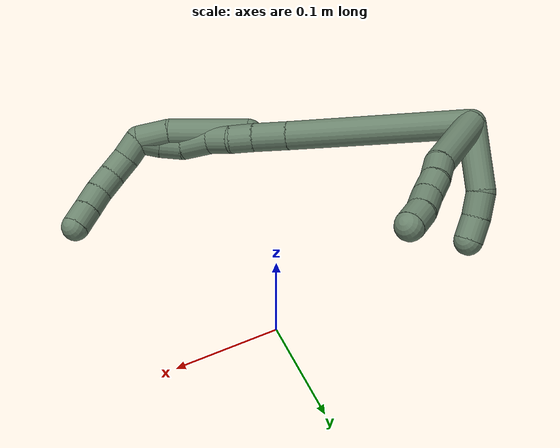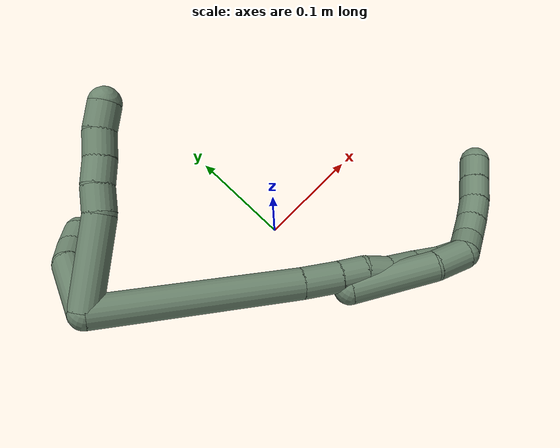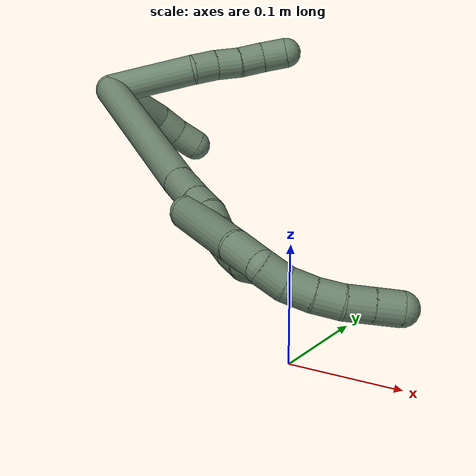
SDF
<sdf version="1.7">
 <world name="default">
  <model name="17">
   <static>0</static>
   <link name="17">
    <collision name="collision-cylinder-e_1_2_8">
     <pose>0.019589 0.017103 0.023149 -0.636306 0.597581 -0.20219</pose>
     <geometry><cylinder><radius>0.0125</radius><length>0.06963</length></cylinder></geometry>
     <surface>
      <friction><ode><mu>1.16</mu><mu2>1.16</mu2><slip1>0</slip1><slip2>0</slip2></ode></friction>
      <contact><ode><kp>1e+06</kp><kd>1</kd><max_vel>0</max_vel><min_depth>0.001</min_depth></ode></contact>
     </surface>
    </collision>
    <visual name="visual-cylinder-e_1_2_8">
     <pose>0.019589 0.017103 0.023149 -0.636306 0.597581 -0.20219</pose>
     <geometry><cylinder><radius>0.0125</radius><length>0.06963</length></cylinder></geometry>
     <material><ambient>0.415686 0.509804 0.423529 1</ambient></material>
    </visual>
    <collision name="collision-cylinder-e_2_8_9">
     <pose>0.044157 0.041305 0.051487 -0.939599 0.515255 -0.265969</pose>
     <geometry><cylinder><radius>0.0125</radius><length>0.020211</length></cylinder></geometry>
     <surface>
      <friction><ode><mu>1.16</mu><mu2>1.16</mu2><slip1>0</slip1><slip2>0</slip2></ode></friction>
      <contact><ode><kp>1e+06</kp><kd>1</kd><max_vel>0</max_vel><min_depth>0.001</min_depth></ode></contact>
     </surface>
    </collision>
    <visual name="visual-cylinder-e_2_8_9">
     <pose>0.044157 0.041305 0.051487 -0.939599 0.515255 -0.265969</pose>
     <geometry><cylinder><radius>0.0125</radius><length>0.020211</length></cylinder></geometry>
     <material><ambient>0.415686 0.509804 0.423529 1</ambient></material>
    </visual>
    <collision name="collision-cylinder-e_3_9_10">
     <pose>0.05532 0.05433 0.061869 -0.851296 0.665429 -0.310804</pose>
     <geometry><cylinder><radius>0.0125</radius><length>0.020032</length></cylinder></geometry>
     <surface>
      <friction><ode><mu>1.16</mu><mu2>1.16</mu2><slip1>0</slip1><slip2>0</slip2></ode></friction>
      <contact><ode><kp>1e+06</kp><kd>1</kd><max_vel>0</max_vel><min_depth>0.001</min_depth></ode></contact>
     </surface>
    </collision>
    <visual name="visual-cylinder-e_3_9_10">
     <pose>0.05532 0.05433 0.061869 -0.851296 0.665429 -0.310804</pose>
     <geometry><cylinder><radius>0.0125</radius><length>0.020032</length></cylinder></geometry>
     <material><ambient>0.415686 0.509804 0.423529 1</ambient></material>
    </visual>
    <collision name="collision-cylinder-e_4_10_11">
     <pose>0.066592 0.066798 0.07271 -0.858489 0.53206 -0.248159</pose>
     <geometry><cylinder><radius>0.0125</radius><length>0.020058</length></cylinder></geometry>
     <surface>
      <friction><ode><mu>1.16</mu><mu2>1.16</mu2><slip1>0</slip1><slip2>0</slip2></ode></friction>
      <contact><ode><kp>1e+06</kp><kd>1</kd><max_vel>0</max_vel><min_depth>0.001</min_depth></ode></contact>
     </surface>
    </collision>
    <visual name="visual-cylinder-e_4_10_11">
     <pose>0.066592 0.066798 0.07271 -0.858489 0.53206 -0.248159</pose>
     <geometry><cylinder><radius>0.0125</radius><length>0.020058</length></cylinder></geometry>
     <material><ambient>0.415686 0.509804 0.423529 1</ambient></material>
    </visual>
    <collision name="collision-cylinder-e_5_11_6">
     <pose>0.077724 0.078129 0.084778 -0.641049 0.646447 -0.221492</pose>
     <geometry><cylinder><radius>0.0125</radius><length>0.020069</length></cylinder></geometry>
     <surface>
      <friction><ode><mu>1.16</mu><mu2>1.16</mu2><slip1>0</slip1><slip2>0</slip2></ode></friction>
      <contact><ode><kp>1e+06</kp><kd>1</kd><max_vel>0</max_vel><min_depth>0.001</min_depth></ode></contact>
     </surface>
    </collision>
    <visual name="visual-cylinder-e_5_11_6">
     <pose>0.077724 0.078129 0.084778 -0.641049 0.646447 -0.221492</pose>
     <geometry><cylinder><radius>0.0125</radius><length>0.020069</length></cylinder></geometry>
     <material><ambient>0.415686 0.509804 0.423529 1</ambient></material>
    </visual>
    <collision name="collision-cylinder-e_1_2_12">
     <pose>0.016287 0.022708 -0.00768 -1.89693 0.596777 -0.810019</pose>
     <geometry><cylinder><radius>0.0125</radius><length>0.057961</length></cylinder></geometry>
     <surface>
      <friction><ode><mu>1.16</mu><mu2>1.16</mu2><slip1>0</slip1><slip2>0</slip2></ode></friction>
      <contact><ode><kp>1e+06</kp><kd>1</kd><max_vel>0</max_vel><min_depth>0.001</min_depth></ode></contact>
     </surface>
    </collision>
    <visual name="visual-cylinder-e_1_2_12">
     <pose>0.016287 0.022708 -0.00768 -1.89693 0.596777 -0.810019</pose>
     <geometry><cylinder><radius>0.0125</radius><length>0.057961</length></cylinder></geometry>
     <material><ambient>0.415686 0.509804 0.423529 1</ambient></material>
    </visual>
    <collision name="collision-cylinder-e_2_12_13">
     <pose>0.041386 0.05139 -0.017815 -1.96064 0.938355 -1.29509</pose>
     <geometry><cylinder><radius>0.0125</radius><length>0.021853</length></cylinder></geometry>
     <surface>
      <friction><ode><mu>1.16</mu><mu2>1.16</mu2><slip1>0</slip1><slip2>0</slip2></ode></friction>
      <contact><ode><kp>1e+06</kp><kd>1</kd><max_vel>0</max_vel><min_depth>0.001</min_depth></ode></contact>
     </surface>
    </collision>
    <visual name="visual-cylinder-e_2_12_13">
     <pose>0.041386 0.05139 -0.017815 -1.96064 0.938355 -1.29509</pose>
     <geometry><cylinder><radius>0.0125</radius><length>0.021853</length></cylinder></geometry>
     <material><ambient>0.415686 0.509804 0.423529 1</ambient></material>
    </visual>
    <collision name="collision-cylinder-e_3_13_5">
     <pose>0.058925 0.062353 -0.021187 -1.75272 1.04422 -1.20914</pose>
     <geometry><cylinder><radius>0.0125</radius><length>0.020186</length></cylinder></geometry>
     <surface>
      <friction><ode><mu>1.16</mu><mu2>1.16</mu2><slip1>0</slip1><slip2>0</slip2></ode></friction>
      <contact><ode><kp>1e+06</kp><kd>1</kd><max_vel>0</max_vel><min_depth>0.001</min_depth></ode></contact>
     </surface>
    </collision>
    <visual name="visual-cylinder-e_3_13_5">
     <pose>0.058925 0.062353 -0.021187 -1.75272 1.04422 -1.20914</pose>
     <geometry><cylinder><radius>0.0125</radius><length>0.020186</length></cylinder></geometry>
     <material><ambient>0.415686 0.509804 0.423529 1</ambient></material>
    </visual>
    <collision name="collision-cylinder-e_1_2_14">
     <pose>0.060897 -0.049434 0.016401 1.25045 0.863251 0.641939</pose>
     <geometry><cylinder><radius>0.0125</radius><length>0.160264</length></cylinder></geometry>
     <surface>
      <friction><ode><mu>1.16</mu><mu2>1.16</mu2><slip1>0</slip1><slip2>0</slip2></ode></friction>
      <contact><ode><kp>1e+06</kp><kd>1</kd><max_vel>0</max_vel><min_depth>0.001</min_depth></ode></contact>
     </surface>
    </collision>
    <visual name="visual-cylinder-e_1_2_14">
     <pose>0.060897 -0.049434 0.016401 1.25045 0.863251 0.641939</pose>
     <geometry><cylinder><radius>0.0125</radius><length>0.160264</length></cylinder></geometry>
     <material><ambient>0.415686 0.509804 0.423529 1</ambient></material>
    </visual>
    <collision name="collision-cylinder-e_2_14_15">
     <pose>0.133529 -0.108127 0.036767 1.16616 0.861458 0.588559</pose>
     <geometry><cylinder><radius>0.0125</radius><length>0.030931</length></cylinder></geometry>
     <surface>
      <friction><ode><mu>1.16</mu><mu2>1.16</mu2><slip1>0</slip1><slip2>0</slip2></ode></friction>
      <contact><ode><kp>1e+06</kp><kd>1</kd><max_vel>0</max_vel><min_depth>0.001</min_depth></ode></contact>
     </surface>
    </collision>
    <visual name="visual-cylinder-e_2_14_15">
     <pose>0.133529 -0.108127 0.036767 1.16616 0.861458 0.588559</pose>
     <geometry><cylinder><radius>0.0125</radius><length>0.030931</length></cylinder></geometry>
     <material><ambient>0.415686 0.509804 0.423529 1</ambient></material>
    </visual>
    <collision name="collision-cylinder-e_3_15_16">
     <pose>0.153522 -0.123438 0.043637 1.12325 0.888331 0.581872</pose>
     <geometry><cylinder><radius>0.0125</radius><length>0.021283</length></cylinder></geometry>
     <surface>
      <friction><ode><mu>1.16</mu><mu2>1.16</mu2><slip1>0</slip1><slip2>0</slip2></ode></friction>
      <contact><ode><kp>1e+06</kp><kd>1</kd><max_vel>0</max_vel><min_depth>0.001</min_depth></ode></contact>
     </surface>
    </collision>
    <visual name="visual-cylinder-e_3_15_16">
     <pose>0.153522 -0.123438 0.043637 1.12325 0.888331 0.581872</pose>
     <geometry><cylinder><radius>0.0125</radius><length>0.021283</length></cylinder></geometry>
     <material><ambient>0.415686 0.509804 0.423529 1</ambient></material>
    </visual>
    <collision name="collision-cylinder-e_4_16_17">
     <pose>0.168969 -0.13658 0.047465 1.44142 0.78798 0.700201</pose>
     <geometry><cylinder><radius>0.0125</radius><length>0.020279</length></cylinder></geometry>
     <surface>
      <friction><ode><mu>1.16</mu><mu2>1.16</mu2><slip1>0</slip1><slip2>0</slip2></ode></friction>
      <contact><ode><kp>1e+06</kp><kd>1</kd><max_vel>0</max_vel><min_depth>0.001</min_depth></ode></contact>
     </surface>
    </collision>
    <visual name="visual-cylinder-e_4_16_17">
     <pose>0.168969 -0.13658 0.047465 1.44142 0.78798 0.700201</pose>
     <geometry><cylinder><radius>0.0125</radius><length>0.020279</length></cylinder></geometry>
     <material><ambient>0.415686 0.509804 0.423529 1</ambient></material>
    </visual>
    <collision name="collision-cylinder-e_5_17_18">
     <pose>0.187265 -0.150492 0.050278 1.30044 1.00348 0.790509</pose>
     <geometry><cylinder><radius>0.0125</radius><length>0.026343</length></cylinder></geometry>
     <surface>
      <friction><ode><mu>1.16</mu><mu2>1.16</mu2><slip1>0</slip1><slip2>0</slip2></ode></friction>
      <contact><ode><kp>1e+06</kp><kd>1</kd><max_vel>0</max_vel><min_depth>0.001</min_depth></ode></contact>
     </surface>
    </collision>
    <visual name="visual-cylinder-e_5_17_18">
     <pose>0.187265 -0.150492 0.050278 1.30044 1.00348 0.790509</pose>
     <geometry><cylinder><radius>0.0125</radius><length>0.026343</length></cylinder></geometry>
     <material><ambient>0.415686 0.509804 0.423529 1</ambient></material>
    </visual>
    <collision name="collision-cylinder-e_6_18_19">
     <pose>0.205276 -0.163985 0.05604 1.04493 0.729936 0.43314</pose>
     <geometry><cylinder><radius>0.0125</radius><length>0.020703</length></cylinder></geometry>
     <surface>
      <friction><ode><mu>1.16</mu><mu2>1.16</mu2><slip1>0</slip1><slip2>0</slip2></ode></friction>
      <contact><ode><kp>1e+06</kp><kd>1</kd><max_vel>0</max_vel><min_depth>0.001</min_depth></ode></contact>
     </surface>
    </collision>
    <visual name="visual-cylinder-e_6_18_19">
     <pose>0.205276 -0.163985 0.05604 1.04493 0.729936 0.43314</pose>
     <geometry><cylinder><radius>0.0125</radius><length>0.020703</length></cylinder></geometry>
     <material><ambient>0.415686 0.509804 0.423529 1</ambient></material>
    </visual>
    <collision name="collision-cylinder-e_7_19_1">
     <pose>0.217757 -0.176314 0.066145 0.736993 0.585326 0.231655</pose>
     <geometry><cylinder><radius>0.0125</radius><length>0.020197</length></cylinder></geometry>
     <surface>
      <friction><ode><mu>1.16</mu><mu2>1.16</mu2><slip1>0</slip1><slip2>0</slip2></ode></friction>
      <contact><ode><kp>1e+06</kp><kd>1</kd><max_vel>0</max_vel><min_depth>0.001</min_depth></ode></contact>
     </surface>
    </collision>
    <visual name="visual-cylinder-e_7_19_1">
     <pose>0.217757 -0.176314 0.066145 0.736993 0.585326 0.231655</pose>
     <geometry><cylinder><radius>0.0125</radius><length>0.020197</length></cylinder></geometry>
     <material><ambient>0.415686 0.509804 0.423529 1</ambient></material>
    </visual>
    <collision name="collision-cylinder-e_1_1_20">
     <pose>0.233059 -0.179633 0.07234 -1.58726 1.33483 -1.35087</pose>
     <geometry><cylinder><radius>0.0125</radius><length>0.02</length></cylinder></geometry>
     <surface>
      <friction><ode><mu>1.16</mu><mu2>1.16</mu2><slip1>0</slip1><slip2>0</slip2></ode></friction>
      <contact><ode><kp>1e+06</kp><kd>1</kd><max_vel>0</max_vel><min_depth>0.001</min_depth></ode></contact>
     </surface>
    </collision>
    <visual name="visual-cylinder-e_1_1_20">
     <pose>0.233059 -0.179633 0.07234 -1.58726 1.33483 -1.35087</pose>
     <geometry><cylinder><radius>0.0125</radius><length>0.02</length></cylinder></geometry>
     <material><ambient>0.415686 0.509804 0.423529 1</ambient></material>
    </visual>
    <collision name="collision-cylinder-e_2_20_21">
     <pose>0.252014 -0.174155 0.074518 -0.9562 1.17627 -0.665437</pose>
     <geometry><cylinder><radius>0.0125</radius><length>0.02</length></cylinder></geometry>
     <surface>
      <friction><ode><mu>1.16</mu><mu2>1.16</mu2><slip1>0</slip1><slip2>0</slip2></ode></friction>
      <contact><ode><kp>1e+06</kp><kd>1</kd><max_vel>0</max_vel><min_depth>0.001</min_depth></ode></contact>
     </surface>
    </collision>
    <visual name="visual-cylinder-e_2_20_21">
     <pose>0.252014 -0.174155 0.074518 -0.9562 1.17627 -0.665437</pose>
     <geometry><cylinder><radius>0.0125</radius><length>0.02</length></cylinder></geometry>
     <material><ambient>0.415686 0.509804 0.423529 1</ambient></material>
    </visual>
    <collision name="collision-cylinder-e_3_21_22">
     <pose>0.269904 -0.167063 0.079803 -0.910552 1.04684 -0.550726</pose>
     <geometry><cylinder><radius>0.0125</radius><length>0.02</length></cylinder></geometry>
     <surface>
      <friction><ode><mu>1.16</mu><mu2>1.16</mu2><slip1>0</slip1><slip2>0</slip2></ode></friction>
      <contact><ode><kp>1e+06</kp><kd>1</kd><max_vel>0</max_vel><min_depth>0.001</min_depth></ode></contact>
     </surface>
    </collision>
    <visual name="visual-cylinder-e_3_21_22">
     <pose>0.269904 -0.167063 0.079803 -0.910552 1.04684 -0.550726</pose>
     <geometry><cylinder><radius>0.0125</radius><length>0.02</length></cylinder></geometry>
     <material><ambient>0.415686 0.509804 0.423529 1</ambient></material>
    </visual>
    <collision name="collision-cylinder-e_4_22_23">
     <pose>0.286255 -0.157727 0.086312 -1.00211 0.877586 -0.503159</pose>
     <geometry><cylinder><radius>0.0125</radius><length>0.02</length></cylinder></geometry>
     <surface>
      <friction><ode><mu>1.16</mu><mu2>1.16</mu2><slip1>0</slip1><slip2>0</slip2></ode></friction>
      <contact><ode><kp>1e+06</kp><kd>1</kd><max_vel>0</max_vel><min_depth>0.001</min_depth></ode></contact>
     </surface>
    </collision>
    <visual name="visual-cylinder-e_4_22_23">
     <pose>0.286255 -0.157727 0.086312 -1.00211 0.877586 -0.503159</pose>
     <geometry><cylinder><radius>0.0125</radius><length>0.02</length></cylinder></geometry>
     <material><ambient>0.415686 0.509804 0.423529 1</ambient></material>
    </visual>
    <collision name="collision-cylinder-e_5_23_4">
     <pose>0.301688 -0.147059 0.09324 -0.987569 0.885358 -0.499669</pose>
     <geometry><cylinder><radius>0.0125</radius><length>0.02</length></cylinder></geometry>
     <surface>
      <friction><ode><mu>1.16</mu><mu2>1.16</mu2><slip1>0</slip1><slip2>0</slip2></ode></friction>
      <contact><ode><kp>1e+06</kp><kd>1</kd><max_vel>0</max_vel><min_depth>0.001</min_depth></ode></contact>
     </surface>
    </collision>
    <visual name="visual-cylinder-e_5_23_4">
     <pose>0.301688 -0.147059 0.09324 -0.987569 0.885358 -0.499669</pose>
     <geometry><cylinder><radius>0.0125</radius><length>0.02</length></cylinder></geometry>
     <material><ambient>0.415686 0.509804 0.423529 1</ambient></material>
    </visual>
    <collision name="collision-cylinder-e_1_1_24">
     <pose>0.211065 -0.175931 0.067937 -2.20492 -1.02238 1.6739</pose>
     <geometry><cylinder><radius>0.0125</radius><length>0.028761</length></cylinder></geometry>
     <surface>
      <friction><ode><mu>1.16</mu><mu2>1.16</mu2><slip1>0</slip1><slip2>0</slip2></ode></friction>
      <contact><ode><kp>1e+06</kp><kd>1</kd><max_vel>0</max_vel><min_depth>0.001</min_depth></ode></contact>
     </surface>
    </collision>
    <visual name="visual-cylinder-e_1_1_24">
     <pose>0.211065 -0.175931 0.067937 -2.20492 -1.02238 1.6739</pose>
     <geometry><cylinder><radius>0.0125</radius><length>0.028761</length></cylinder></geometry>
     <material><ambient>0.415686 0.509804 0.423529 1</ambient></material>
    </visual>
    <collision name="collision-cylinder-e_2_24_3">
     <pose>0.173137 -0.149588 0.049415 -2.17714 -0.80424 1.36462</pose>
     <geometry><cylinder><radius>0.0125</radius><length>0.071239</length></cylinder></geometry>
     <surface>
      <friction><ode><mu>1.16</mu><mu2>1.16</mu2><slip1>0</slip1><slip2>0</slip2></ode></friction>
      <contact><ode><kp>1e+06</kp><kd>1</kd><max_vel>0</max_vel><min_depth>0.001</min_depth></ode></contact>
     </surface>
    </collision>
    <visual name="visual-cylinder-e_2_24_3">
     <pose>0.173137 -0.149588 0.049415 -2.17714 -0.80424 1.36462</pose>
     <geometry><cylinder><radius>0.0125</radius><length>0.071239</length></cylinder></geometry>
     <material><ambient>0.415686 0.509804 0.423529 1</ambient></material>
    </visual>
    <collision name="collision-sphere-3">
     <pose>0.14748 -0.129285 0.035335 0 -0 0</pose>
     <geometry><sphere><radius>0.0125</radius></sphere></geometry>
     <surface>
      <friction><ode><mu>1.16</mu><mu2>1.16</mu2><slip1>0</slip1><slip2>0</slip2></ode></friction>
      <contact><ode><kp>1e+06</kp><kd>1</kd><max_vel>0</max_vel><min_depth>0.001</min_depth></ode></contact>
     </surface>
    </collision>
    <visual name="visual-sphere-3">
     <pose>0.14748 -0.129285 0.035335 0 -0 0</pose>
     <geometry><sphere><radius>0.0125</radius></sphere></geometry>
     <material><ambient>0.415686 0.509804 0.423529 1</ambient></material>
    </visual>
    <collision name="collision-sphere-24">
     <pose>0.198793 -0.169892 0.063495 0 -0 0</pose>
     <geometry><sphere><radius>0.0125</radius></sphere></geometry>
     <surface>
      <friction><ode><mu>1.16</mu><mu2>1.16</mu2><slip1>0</slip1><slip2>0</slip2></ode></friction>
      <contact><ode><kp>1e+06</kp><kd>1</kd><max_vel>0</max_vel><min_depth>0.001</min_depth></ode></contact>
     </surface>
    </collision>
    <visual name="visual-sphere-24">
     <pose>0.198793 -0.169892 0.063495 0 -0 0</pose>
     <geometry><sphere><radius>0.0125</radius></sphere></geometry>
     <material><ambient>0.415686 0.509804 0.423529 1</ambient></material>
    </visual>
    <collision name="collision-sphere-4">
     <pose>0.30943 -0.141776 0.096726 0 -0 0</pose>
     <geometry><sphere><radius>0.0125</radius></sphere></geometry>
     <surface>
      <friction><ode><mu>1.16</mu><mu2>1.16</mu2><slip1>0</slip1><slip2>0</slip2></ode></friction>
      <contact><ode><kp>1e+06</kp><kd>1</kd><max_vel>0</max_vel><min_depth>0.001</min_depth></ode></contact>
     </surface>
    </collision>
    <visual name="visual-sphere-4">
     <pose>0.30943 -0.141776 0.096726 0 -0 0</pose>
     <geometry><sphere><radius>0.0125</radius></sphere></geometry>
     <material><ambient>0.415686 0.509804 0.423529 1</ambient></material>
    </visual>
    <collision name="collision-sphere-23">
     <pose>0.293947 -0.152343 0.089754 0 -0 0</pose>
     <geometry><sphere><radius>0.0125</radius></sphere></geometry>
     <surface>
      <friction><ode><mu>1.16</mu><mu2>1.16</mu2><slip1>0</slip1><slip2>0</slip2></ode></friction>
      <contact><ode><kp>1e+06</kp><kd>1</kd><max_vel>0</max_vel><min_depth>0.001</min_depth></ode></contact>
     </surface>
    </collision>
    <visual name="visual-sphere-23">
     <pose>0.293947 -0.152343 0.089754 0 -0 0</pose>
     <geometry><sphere><radius>0.0125</radius></sphere></geometry>
     <material><ambient>0.415686 0.509804 0.423529 1</ambient></material>
    </visual>
    <collision name="collision-sphere-22">
     <pose>0.278563 -0.163112 0.082871 0 -0 0</pose>
     <geometry><sphere><radius>0.0125</radius></sphere></geometry>
     <surface>
      <friction><ode><mu>1.16</mu><mu2>1.16</mu2><slip1>0</slip1><slip2>0</slip2></ode></friction>
      <contact><ode><kp>1e+06</kp><kd>1</kd><max_vel>0</max_vel><min_depth>0.001</min_depth></ode></contact>
     </surface>
    </collision>
    <visual name="visual-sphere-22">
     <pose>0.278563 -0.163112 0.082871 0 -0 0</pose>
     <geometry><sphere><radius>0.0125</radius></sphere></geometry>
     <material><ambient>0.415686 0.509804 0.423529 1</ambient></material>
    </visual>
    <collision name="collision-sphere-21">
     <pose>0.261246 -0.171015 0.076734 0 -0 0</pose>
     <geometry><sphere><radius>0.0125</radius></sphere></geometry>
     <surface>
      <friction><ode><mu>1.16</mu><mu2>1.16</mu2><slip1>0</slip1><slip2>0</slip2></ode></friction>
      <contact><ode><kp>1e+06</kp><kd>1</kd><max_vel>0</max_vel><min_depth>0.001</min_depth></ode></contact>
     </surface>
    </collision>
    <visual name="visual-sphere-21">
     <pose>0.261246 -0.171015 0.076734 0 -0 0</pose>
     <geometry><sphere><radius>0.0125</radius></sphere></geometry>
     <material><ambient>0.415686 0.509804 0.423529 1</ambient></material>
    </visual>
    <collision name="collision-sphere-20">
     <pose>0.242782 -0.177296 0.072302 0 -0 0</pose>
     <geometry><sphere><radius>0.0125</radius></sphere></geometry>
     <surface>
      <friction><ode><mu>1.16</mu><mu2>1.16</mu2><slip1>0</slip1><slip2>0</slip2></ode></friction>
      <contact><ode><kp>1e+06</kp><kd>1</kd><max_vel>0</max_vel><min_depth>0.001</min_depth></ode></contact>
     </surface>
    </collision>
    <visual name="visual-sphere-20">
     <pose>0.242782 -0.177296 0.072302 0 -0 0</pose>
     <geometry><sphere><radius>0.0125</radius></sphere></geometry>
     <material><ambient>0.415686 0.509804 0.423529 1</ambient></material>
    </visual>
    <collision name="collision-sphere-6">
     <pose>0.083768 0.082919 0.091197 0 -0 0</pose>
     <geometry><sphere><radius>0.0125</radius></sphere></geometry>
     <surface>
      <friction><ode><mu>1.16</mu><mu2>1.16</mu2><slip1>0</slip1><slip2>0</slip2></ode></friction>
      <contact><ode><kp>1e+06</kp><kd>1</kd><max_vel>0</max_vel><min_depth>0.001</min_depth></ode></contact>
     </surface>
    </collision>
    <visual name="visual-sphere-6">
     <pose>0.083768 0.082919 0.091197 0 -0 0</pose>
     <geometry><sphere><radius>0.0125</radius></sphere></geometry>
     <material><ambient>0.415686 0.509804 0.423529 1</ambient></material>
    </visual>
    <collision name="collision-sphere-11">
     <pose>0.071679 0.073339 0.078358 0 -0 0</pose>
     <geometry><sphere><radius>0.0125</radius></sphere></geometry>
     <surface>
      <friction><ode><mu>1.16</mu><mu2>1.16</mu2><slip1>0</slip1><slip2>0</slip2></ode></friction>
      <contact><ode><kp>1e+06</kp><kd>1</kd><max_vel>0</max_vel><min_depth>0.001</min_depth></ode></contact>
     </surface>
    </collision>
    <visual name="visual-sphere-11">
     <pose>0.071679 0.073339 0.078358 0 -0 0</pose>
     <geometry><sphere><radius>0.0125</radius></sphere></geometry>
     <material><ambient>0.415686 0.509804 0.423529 1</ambient></material>
    </visual>
    <collision name="collision-sphere-10">
     <pose>0.061504 0.060256 0.067061 0 -0 0</pose>
     <geometry><sphere><radius>0.0125</radius></sphere></geometry>
     <surface>
      <friction><ode><mu>1.16</mu><mu2>1.16</mu2><slip1>0</slip1><slip2>0</slip2></ode></friction>
      <contact><ode><kp>1e+06</kp><kd>1</kd><max_vel>0</max_vel><min_depth>0.001</min_depth></ode></contact>
     </surface>
    </collision>
    <visual name="visual-sphere-10">
     <pose>0.061504 0.060256 0.067061 0 -0 0</pose>
     <geometry><sphere><radius>0.0125</radius></sphere></geometry>
     <material><ambient>0.415686 0.509804 0.423529 1</ambient></material>
    </visual>
    <collision name="collision-sphere-9">
     <pose>0.049136 0.048404 0.056676 0 -0 0</pose>
     <geometry><sphere><radius>0.0125</radius></sphere></geometry>
     <surface>
      <friction><ode><mu>1.16</mu><mu2>1.16</mu2><slip1>0</slip1><slip2>0</slip2></ode></friction>
      <contact><ode><kp>1e+06</kp><kd>1</kd><max_vel>0</max_vel><min_depth>0.001</min_depth></ode></contact>
     </surface>
    </collision>
    <visual name="visual-sphere-9">
     <pose>0.049136 0.048404 0.056676 0 -0 0</pose>
     <geometry><sphere><radius>0.0125</radius></sphere></geometry>
     <material><ambient>0.415686 0.509804 0.423529 1</ambient></material>
    </visual>
    <collision name="collision-sphere-2">
     <geometry><sphere><radius>0.0125</radius></sphere></geometry>
     <surface>
      <friction><ode><mu>1.16</mu><mu2>1.16</mu2><slip1>0</slip1><slip2>0</slip2></ode></friction>
      <contact><ode><kp>1e+06</kp><kd>1</kd><max_vel>0</max_vel><min_depth>0.001</min_depth></ode></contact>
     </surface>
    </collision>
    <visual name="visual-sphere-2">
     <geometry><sphere><radius>0.0125</radius></sphere></geometry>
     <material><ambient>0.415686 0.509804 0.423529 1</ambient></material>
    </visual>
    <collision name="collision-sphere-19">
     <pose>0.212178 -0.170656 0.059912 0 -0 0</pose>
     <geometry><sphere><radius>0.0125</radius></sphere></geometry>
     <surface>
      <friction><ode><mu>1.16</mu><mu2>1.16</mu2><slip1>0</slip1><slip2>0</slip2></ode></friction>
      <contact><ode><kp>1e+06</kp><kd>1</kd><max_vel>0</max_vel><min_depth>0.001</min_depth></ode></contact>
     </surface>
    </collision>
    <visual name="visual-sphere-19">
     <pose>0.212178 -0.170656 0.059912 0 -0 0</pose>
     <geometry><sphere><radius>0.0125</radius></sphere></geometry>
     <material><ambient>0.415686 0.509804 0.423529 1</ambient></material>
    </visual>
    <collision name="collision-sphere-8">
     <pose>0.039177 0.034206 0.046298 0 -0 0</pose>
     <geometry><sphere><radius>0.0125</radius></sphere></geometry>
     <surface>
      <friction><ode><mu>1.16</mu><mu2>1.16</mu2><slip1>0</slip1><slip2>0</slip2></ode></friction>
      <contact><ode><kp>1e+06</kp><kd>1</kd><max_vel>0</max_vel><min_depth>0.001</min_depth></ode></contact>
     </surface>
    </collision>
    <visual name="visual-sphere-8">
     <pose>0.039177 0.034206 0.046298 0 -0 0</pose>
     <geometry><sphere><radius>0.0125</radius></sphere></geometry>
     <material><ambient>0.415686 0.509804 0.423529 1</ambient></material>
    </visual>
    <collision name="collision-sphere-12">
     <pose>0.032573 0.045416 -0.01536 0 -0 0</pose>
     <geometry><sphere><radius>0.0125</radius></sphere></geometry>
     <surface>
      <friction><ode><mu>1.16</mu><mu2>1.16</mu2><slip1>0</slip1><slip2>0</slip2></ode></friction>
      <contact><ode><kp>1e+06</kp><kd>1</kd><max_vel>0</max_vel><min_depth>0.001</min_depth></ode></contact>
     </surface>
    </collision>
    <visual name="visual-sphere-12">
     <pose>0.032573 0.045416 -0.01536 0 -0 0</pose>
     <geometry><sphere><radius>0.0125</radius></sphere></geometry>
     <material><ambient>0.415686 0.509804 0.423529 1</ambient></material>
    </visual>
    <collision name="collision-sphere-13">
     <pose>0.050199 0.057364 -0.020269 0 -0 0</pose>
     <geometry><sphere><radius>0.0125</radius></sphere></geometry>
     <surface>
      <friction><ode><mu>1.16</mu><mu2>1.16</mu2><slip1>0</slip1><slip2>0</slip2></ode></friction>
      <contact><ode><kp>1e+06</kp><kd>1</kd><max_vel>0</max_vel><min_depth>0.001</min_depth></ode></contact>
     </surface>
    </collision>
    <visual name="visual-sphere-13">
     <pose>0.050199 0.057364 -0.020269 0 -0 0</pose>
     <geometry><sphere><radius>0.0125</radius></sphere></geometry>
     <material><ambient>0.415686 0.509804 0.423529 1</ambient></material>
    </visual>
    <collision name="collision-sphere-5">
     <pose>0.067651 0.067341 -0.022105 0 -0 0</pose>
     <geometry><sphere><radius>0.0125</radius></sphere></geometry>
     <surface>
      <friction><ode><mu>1.16</mu><mu2>1.16</mu2><slip1>0</slip1><slip2>0</slip2></ode></friction>
      <contact><ode><kp>1e+06</kp><kd>1</kd><max_vel>0</max_vel><min_depth>0.001</min_depth></ode></contact>
     </surface>
    </collision>
    <visual name="visual-sphere-5">
     <pose>0.067651 0.067341 -0.022105 0 -0 0</pose>
     <geometry><sphere><radius>0.0125</radius></sphere></geometry>
     <material><ambient>0.415686 0.509804 0.423529 1</ambient></material>
    </visual>
    <collision name="collision-sphere-14">
     <pose>0.121794 -0.098867 0.032802 0 -0 0</pose>
     <geometry><sphere><radius>0.0125</radius></sphere></geometry>
     <surface>
      <friction><ode><mu>1.16</mu><mu2>1.16</mu2><slip1>0</slip1><slip2>0</slip2></ode></friction>
      <contact><ode><kp>1e+06</kp><kd>1</kd><max_vel>0</max_vel><min_depth>0.001</min_depth></ode></contact>
     </surface>
    </collision>
    <visual name="visual-sphere-14">
     <pose>0.121794 -0.098867 0.032802 0 -0 0</pose>
     <geometry><sphere><radius>0.0125</radius></sphere></geometry>
     <material><ambient>0.415686 0.509804 0.423529 1</ambient></material>
    </visual>
    <collision name="collision-sphere-15">
     <pose>0.145264 -0.117387 0.040733 0 -0 0</pose>
     <geometry><sphere><radius>0.0125</radius></sphere></geometry>
     <surface>
      <friction><ode><mu>1.16</mu><mu2>1.16</mu2><slip1>0</slip1><slip2>0</slip2></ode></friction>
      <contact><ode><kp>1e+06</kp><kd>1</kd><max_vel>0</max_vel><min_depth>0.001</min_depth></ode></contact>
     </surface>
    </collision>
    <visual name="visual-sphere-15">
     <pose>0.145264 -0.117387 0.040733 0 -0 0</pose>
     <geometry><sphere><radius>0.0125</radius></sphere></geometry>
     <material><ambient>0.415686 0.509804 0.423529 1</ambient></material>
    </visual>
    <collision name="collision-sphere-16">
     <pose>0.161781 -0.129488 0.046542 0 -0 0</pose>
     <geometry><sphere><radius>0.0125</radius></sphere></geometry>
     <surface>
      <friction><ode><mu>1.16</mu><mu2>1.16</mu2><slip1>0</slip1><slip2>0</slip2></ode></friction>
      <contact><ode><kp>1e+06</kp><kd>1</kd><max_vel>0</max_vel><min_depth>0.001</min_depth></ode></contact>
     </surface>
    </collision>
    <visual name="visual-sphere-16">
     <pose>0.161781 -0.129488 0.046542 0 -0 0</pose>
     <geometry><sphere><radius>0.0125</radius></sphere></geometry>
     <material><ambient>0.415686 0.509804 0.423529 1</ambient></material>
    </visual>
    <collision name="collision-sphere-17">
     <pose>0.176157 -0.143671 0.048387 0 -0 0</pose>
     <geometry><sphere><radius>0.0125</radius></sphere></geometry>
     <surface>
      <friction><ode><mu>1.16</mu><mu2>1.16</mu2><slip1>0</slip1><slip2>0</slip2></ode></friction>
      <contact><ode><kp>1e+06</kp><kd>1</kd><max_vel>0</max_vel><min_depth>0.001</min_depth></ode></contact>
     </surface>
    </collision>
    <visual name="visual-sphere-17">
     <pose>0.176157 -0.143671 0.048387 0 -0 0</pose>
     <geometry><sphere><radius>0.0125</radius></sphere></geometry>
     <material><ambient>0.415686 0.509804 0.423529 1</ambient></material>
    </visual>
    <collision name="collision-sphere-18">
     <pose>0.198373 -0.157313 0.052168 0 -0 0</pose>
     <geometry><sphere><radius>0.0125</radius></sphere></geometry>
     <surface>
      <friction><ode><mu>1.16</mu><mu2>1.16</mu2><slip1>0</slip1><slip2>0</slip2></ode></friction>
      <contact><ode><kp>1e+06</kp><kd>1</kd><max_vel>0</max_vel><min_depth>0.001</min_depth></ode></contact>
     </surface>
    </collision>
    <visual name="visual-sphere-18">
     <pose>0.198373 -0.157313 0.052168 0 -0 0</pose>
     <geometry><sphere><radius>0.0125</radius></sphere></geometry>
     <material><ambient>0.415686 0.509804 0.423529 1</ambient></material>
    </visual>
    <collision name="collision-sphere-1">
     <pose>0.223337 -0.181971 0.072378 0 -0 0</pose>
     <geometry><sphere><radius>0.0125</radius></sphere></geometry>
     <surface>
      <friction><ode><mu>1.16</mu><mu2>1.16</mu2><slip1>0</slip1><slip2>0</slip2></ode></friction>
      <contact><ode><kp>1e+06</kp><kd>1</kd><max_vel>0</max_vel><min_depth>0.001</min_depth></ode></contact>
     </surface>
    </collision>
    <visual name="visual-sphere-1">
     <pose>0.223337 -0.181971 0.072378 0 -0 0</pose>
     <geometry><sphere><radius>0.0125</radius></sphere></geometry>
     <material><ambient>0.415686 0.509804 0.423529 1</ambient></material>
    </visual>
    <inertial>
     <pose>0.118301 -0.066792 0.038487 0 -0 0</pose>
     <mass>0.75</mass>
     <inertia>
      <ixx>0.00041</ixx>
      <ixy>0</ixy>
      <ixz>0</ixz>
      <iyy>0.000456</iyy>
      <iyz>0</iyz>
      <izz>-0.000113</izz>
     </inertia>
    </inertial>
   </link>
   <pose>-0.177041 0.007525 0.202523 -0.00939 0.600388 0.08743</pose>
  </model>
 </world>
</sdf>
